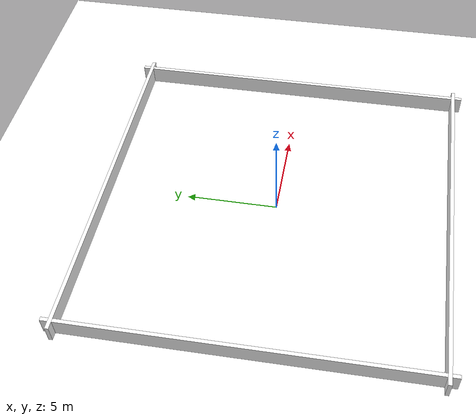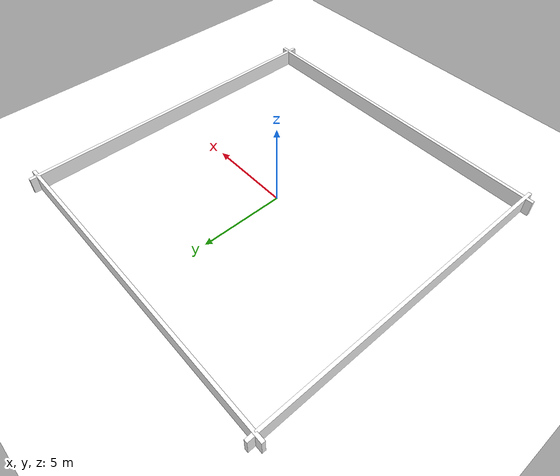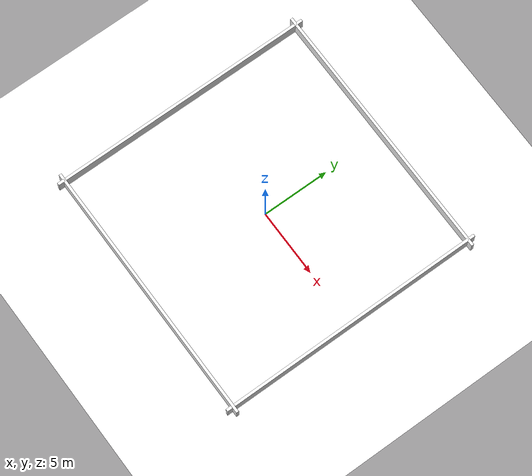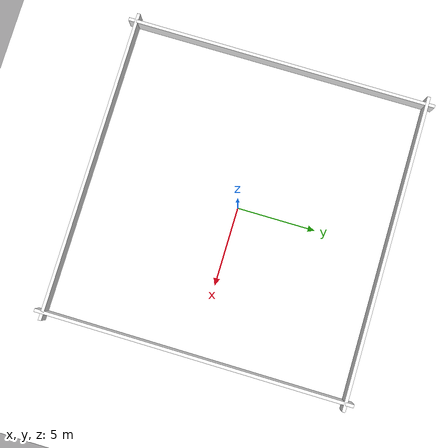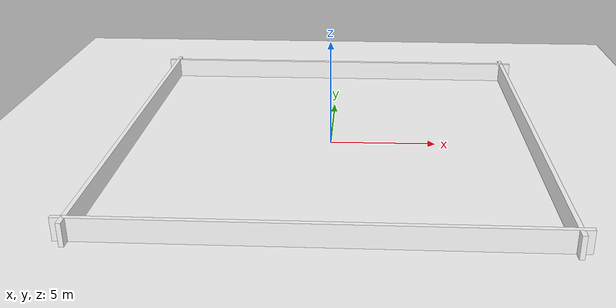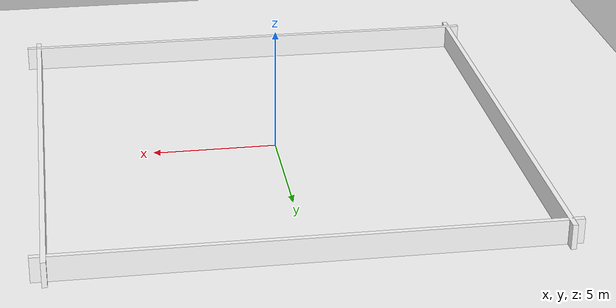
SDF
<?xml version="1.7"?>
<sdf version="1.10">
  <world name="parking_world">

    <!-- ☀ 밝은 태양광 -->
    <light name="sun" type="directional">
      <pose>0 0 10 0 0 0</pose>
      <diffuse>1 1 1 1</diffuse>
      <specular>0.2 0.2 0.2 1</specular>
      <direction>-0.2 -0.3 -1</direction>
      <cast_shadows>false</cast_shadows>
    </light>

    <!-- ===== 바닥 (순백색) ===== -->
    <model name="ground">
      <static>true</static>
      <pose>0 0 0 0 0 0</pose>
      <link name="link">
        <collision name="collision">
          <geometry>
            <plane>
              <normal>0 0 1</normal>
              <size>20 20</size>
            </plane>
          </geometry>
        </collision>
        <visual name="visual">
          <geometry>
            <plane>
              <normal>0 0 1</normal>
              <size>20 20</size>
            </plane>
          </geometry>
          <material>
            <ambient>1 1 1 1</ambient>
            <diffuse>1 1 1 1</diffuse>
            <specular>0.1 0.1 0.1 1</specular>
          </material>
        </visual>
      </link>
    </model>

    <!-- ===== 벽 4개 (plane 끝쪽로 이동) ===== -->

    <model name="wall_north">
      <static>true</static>
      <pose>0 9.5 0.5 0 0 0</pose>
      <link name="link">
        <collision name="collision">
          <geometry><box><size>20 0.2 1</size></box></geometry>
        </collision>
        <visual name="visual">
          <geometry><box><size>20 0.2 1</size></box></geometry>
          <material><ambient>1 1 1 1</ambient><diffuse>1 1 1 1</diffuse></material>
        </visual>
      </link>
    </model>

    <model name="wall_south">
      <static>true</static>
      <pose>0 -9.5 0.5 0 0 0</pose>
      <link name="link">
        <collision name="collision">
          <geometry><box><size>20 0.2 1</size></box></geometry>
        </collision>
        <visual name="visual">
          <geometry><box><size>20 0.2 1</size></box></geometry>
          <material><ambient>1 1 1 1</ambient><diffuse>1 1 1 1</diffuse></material>
        </visual>
      </link>
    </model>

    <model name="wall_west">
      <static>true</static>
      <pose>-9.5 0 0.5 0 0 0</pose>
      <link name="link">
        <collision name="collision">
          <geometry><box><size>0.2 20 1</size></box></geometry>
        </collision>
        <visual name="visual">
          <geometry><box><size>0.2 20 1</size></box></geometry>
          <material><ambient>1 1 1 1</ambient><diffuse>1 1 1 1</diffuse></material>
        </visual>
      </link>
    </model>

    <model name="wall_east">
      <static>true</static>
      <pose>9.5 0 0.5 0 0 0</pose>
      <link name="link">
        <collision name="collision">
          <geometry><box><size>0.2 20 1</size></box></geometry>
        </collision>
        <visual name="visual">
          <geometry><box><size>0.2 20 1</size></box></geometry>
          <material><ambient>1 1 1 1</ambient><diffuse>1 1 1 1</diffuse></material>
        </visual>
      </link>
    </model>

  </world>
</sdf>
